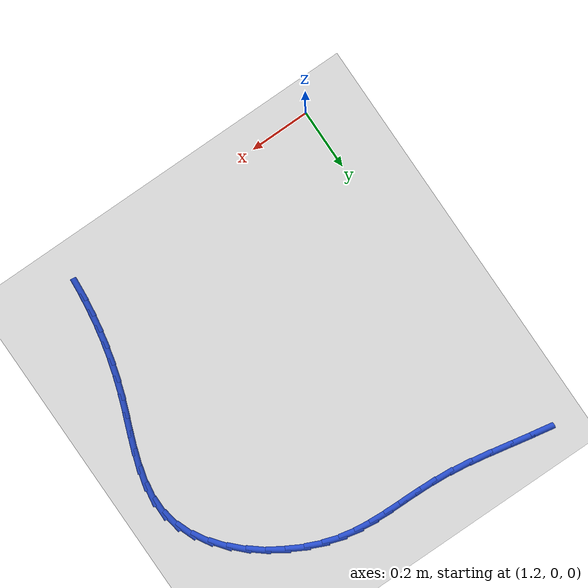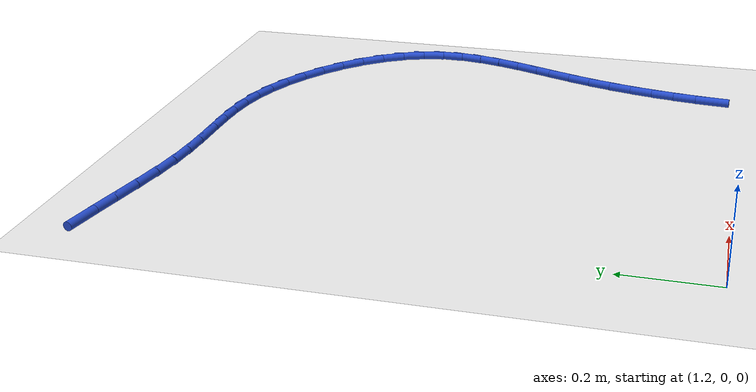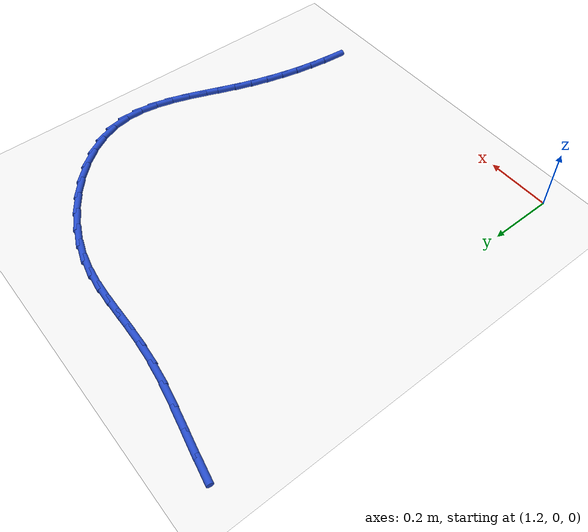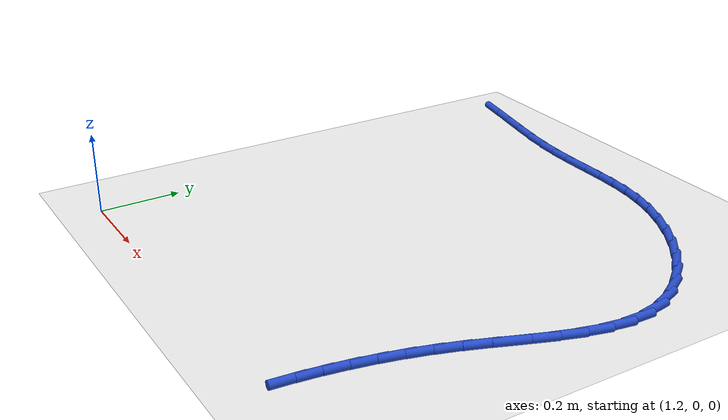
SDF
<sdf version="1.6">
 <world name="default">
  <model name="ground_plane">
   <static>1</static>
   <link name="link">
    <collision name="collision">
     <geometry><plane><normal>0 0 1</normal><size>100 100</size></plane></geometry>
     <surface><friction><ode><mu>100</mu><mu2>50</mu2></ode></friction></surface>
    </collision>
    <visual name="visual">
     <cast_shadows>0</cast_shadows>
     <geometry><plane><normal>0 0 1</normal><size>100 100</size></plane></geometry>
     <material>
      <script><uri>file://media/materials/scripts/gazebo.material</uri><name>Gazebo/WhiteGlow</name></script>
     </material>
    </visual>
   </link>
  </model>
  <model name="line">
   <link name="link_35">
    <pose>1.1548967431918238 1.2301245020325131 0.01 0 1.57 -0.18366892343678137</pose>
    <collision name="collision">
     <geometry><cylinder><radius>0.01</radius><length>0.08</length></cylinder></geometry>
    </collision>
    <visual name="visual">
     <material>
      <script><name>Gazebo/Blue</name><uri>file://media/materials/scripts/gazebo.material</uri></script>
     </material>
     <geometry><cylinder><radius>0.01</radius><length>0.08</length></cylinder></geometry>
    </visual>
   </link>
   <link name="link_36">
    <pose>1.2226299504839877 1.2175422127543887 0.01 0 1.57 -0.19444697268387648</pose>
    <collision name="collision">
     <geometry><cylinder><radius>0.01</radius><length>0.08</length></cylinder></geometry>
    </collision>
    <visual name="visual">
     <material>
      <script><name>Gazebo/Blue</name><uri>file://media/materials/scripts/gazebo.material</uri></script>
     </material>
     <geometry><cylinder><radius>0.01</radius><length>0.08</length></cylinder></geometry>
    </visual>
   </link>
   <link name="link_37">
    <pose>1.2914968063600636 1.2039799000504683 0.01 0 1.57 -0.1876918706073959</pose>
    <collision name="collision">
     <geometry><cylinder><radius>0.01</radius><length>0.08</length></cylinder></geometry>
    </collision>
    <visual name="visual">
     <material>
      <script><name>Gazebo/Blue</name><uri>file://media/materials/scripts/gazebo.material</uri></script>
     </material>
     <geometry><cylinder><radius>0.01</radius><length>0.08</length></cylinder></geometry>
    </visual>
   </link>
   <link name="link_38">
    <pose>1.3601095122993505 1.1909484675255515 0.01 0 1.57 -0.16264667313331255</pose>
    <collision name="collision">
     <geometry><cylinder><radius>0.01</radius><length>0.08</length></cylinder></geometry>
    </collision>
    <visual name="visual">
     <material>
      <script><name>Gazebo/Blue</name><uri>file://media/materials/scripts/gazebo.material</uri></script>
     </material>
     <geometry><cylinder><radius>0.01</radius><length>0.08</length></cylinder></geometry>
    </visual>
   </link>
   <link name="link_39">
    <pose>1.427080269781148 1.1799588187844368 0.01 0 1.57 -0.1162900253006017</pose>
    <collision name="collision">
     <geometry><cylinder><radius>0.01</radius><length>0.08</length></cylinder></geometry>
    </collision>
    <visual name="visual">
     <material>
      <script><name>Gazebo/Blue</name><uri>file://media/materials/scripts/gazebo.material</uri></script>
     </material>
     <geometry><cylinder><radius>0.01</radius><length>0.08</length></cylinder></geometry>
    </visual>
   </link>
   <link name="link_40">
    <pose>1.491045710836937 1.1724865622558065 0.01 0 1.57 -0.06189265783912024</pose>
    <collision name="collision">
     <geometry><cylinder><radius>0.01</radius><length>0.08</length></cylinder></geometry>
    </collision>
    <visual name="visual">
     <material>
      <script><name>Gazebo/Blue</name><uri>file://media/materials/scripts/gazebo.material</uri></script>
     </material>
     <geometry><cylinder><radius>0.01</radius><length>0.08</length></cylinder></geometry>
    </visual>
   </link>
   <link name="link_41">
    <pose>1.5515204781953047 1.1687388314704257 0.01 0 1.57 -0.024410377347635116</pose>
    <collision name="collision">
     <geometry><cylinder><radius>0.01</radius><length>0.08</length></cylinder></geometry>
    </collision>
    <visual name="visual">
     <material>
      <script><name>Gazebo/Blue</name><uri>file://media/materials/scripts/gazebo.material</uri></script>
     </material>
     <geometry><cylinder><radius>0.01</radius><length>0.08</length></cylinder></geometry>
    </visual>
   </link>
   <link name="link_42">
    <pose>1.6091199388111672 1.167332527567537 0.01 0 1.57 -0.009901554772065769</pose>
    <collision name="collision">
     <geometry><cylinder><radius>0.01</radius><length>0.08</length></cylinder></geometry>
    </collision>
    <visual name="visual">
     <material>
      <script><name>Gazebo/Blue</name><uri>file://media/materials/scripts/gazebo.material</uri></script>
     </material>
     <geometry><cylinder><radius>0.01</radius><length>0.08</length></cylinder></geometry>
    </visual>
   </link>
   <link name="link_43">
    <pose>1.6645291477037238 1.166783872320496 0.01 0 1.57 -0.0217905648158715</pose>
    <collision name="collision">
     <geometry><cylinder><radius>0.01</radius><length>0.08</length></cylinder></geometry>
    </collision>
    <visual name="visual">
     <material>
      <script><name>Gazebo/Blue</name><uri>file://media/materials/scripts/gazebo.material</uri></script>
     </material>
     <geometry><cylinder><radius>0.01</radius><length>0.08</length></cylinder></geometry>
    </visual>
   </link>
   <link name="link_44">
    <pose>1.7184331598921756 1.16560908750266 0.01 0 1.57 -0.061798622239073224</pose>
    <collision name="collision">
     <geometry><cylinder><radius>0.01</radius><length>0.08</length></cylinder></geometry>
    </collision>
    <visual name="visual">
     <material>
      <script><name>Gazebo/Blue</name><uri>file://media/materials/scripts/gazebo.material</uri></script>
     </material>
     <geometry><cylinder><radius>0.01</radius><length>0.08</length></cylinder></geometry>
    </visual>
   </link>
   <link name="link_45">
    <pose>1.7715170303957202 1.162324394887384 0.01 0 1.57 -0.12918282378274612</pose>
    <collision name="collision">
     <geometry><cylinder><radius>0.01</radius><length>0.08</length></cylinder></geometry>
    </collision>
    <visual name="visual">
     <material>
      <script><name>Gazebo/Blue</name><uri>file://media/materials/scripts/gazebo.material</uri></script>
     </material>
     <geometry><cylinder><radius>0.01</radius><length>0.08</length></cylinder></geometry>
    </visual>
   </link>
   <link name="link_46">
    <pose>1.824465814233559 1.1554460162480256 0.01 0 1.57 -0.2198661773612178</pose>
    <collision name="collision">
     <geometry><cylinder><radius>0.01</radius><length>0.08</length></cylinder></geometry>
    </collision>
    <visual name="visual">
     <material>
      <script><name>Gazebo/Blue</name><uri>file://media/materials/scripts/gazebo.material</uri></script>
     </material>
     <geometry><cylinder><radius>0.01</radius><length>0.08</length></cylinder></geometry>
    </visual>
   </link>
   <link name="link_47">
    <pose>1.8779645664248898 1.1434901733579397 0.01 0 1.57 -0.3228208349715841</pose>
    <collision name="collision">
     <geometry><cylinder><radius>0.01</radius><length>0.08</length></cylinder></geometry>
    </collision>
    <visual name="visual">
     <material>
      <script><name>Gazebo/Blue</name><uri>file://media/materials/scripts/gazebo.material</uri></script>
     </material>
     <geometry><cylinder><radius>0.01</radius><length>0.08</length></cylinder></geometry>
    </visual>
   </link>
   <link name="link_48">
    <pose>1.932406903756399 1.1252779615877784 0.01 0 1.57 -0.41926896428312277</pose>
    <collision name="collision">
     <geometry><cylinder><radius>0.01</radius><length>0.08</length></cylinder></geometry>
    </collision>
    <visual name="visual">
     <material>
      <script><name>Gazebo/Blue</name><uri>file://media/materials/scripts/gazebo.material</uri></script>
     </material>
     <geometry><cylinder><radius>0.01</radius><length>0.08</length></cylinder></geometry>
    </visual>
   </link>
   <link name="link_49">
    <pose>1.9868760469823592 1.1010012818776396 0.01 0 1.57 -0.5100011967996134</pose>
    <collision name="collision">
     <geometry><cylinder><radius>0.01</radius><length>0.08</length></cylinder></geometry>
    </collision>
    <visual name="visual">
     <material>
      <script><name>Gazebo/Blue</name><uri>file://media/materials/scripts/gazebo.material</uri></script>
     </material>
     <geometry><cylinder><radius>0.01</radius><length>0.08</length></cylinder></geometry>
    </visual>
   </link>
   <link name="link_50">
    <pose>2.040087080061496 1.0712371431480954 0.01 0 1.57 -0.6001442837054394</pose>
    <collision name="collision">
     <geometry><cylinder><radius>0.01</radius><length>0.08</length></cylinder></geometry>
    </collision>
    <visual name="visual">
     <material>
      <script><name>Gazebo/Blue</name><uri>file://media/materials/scripts/gazebo.material</uri></script>
     </material>
     <geometry><cylinder><radius>0.01</radius><length>0.08</length></cylinder></geometry>
    </visual>
   </link>
   <link name="link_51">
    <pose>2.090755067546293 1.0365625746205862 0.01 0 1.57 -0.6944185450121094</pose>
    <collision name="collision">
     <geometry><cylinder><radius>0.01</radius><length>0.08</length></cylinder></geometry>
    </collision>
    <visual name="visual">
     <material>
      <script><name>Gazebo/Blue</name><uri>file://media/materials/scripts/gazebo.material</uri></script>
     </material>
     <geometry><cylinder><radius>0.01</radius><length>0.08</length></cylinder></geometry>
    </visual>
   </link>
   <link name="link_52">
    <pose>2.1375950739892375 0.997554605516552 0.01 0 1.57 -0.7976739456535579</pose>
    <collision name="collision">
     <geometry><cylinder><radius>0.01</radius><length>0.08</length></cylinder></geometry>
    </collision>
    <visual name="visual">
     <material>
      <script><name>Gazebo/Blue</name><uri>file://media/materials/scripts/gazebo.material</uri></script>
     </material>
     <geometry><cylinder><radius>0.01</radius><length>0.08</length></cylinder></geometry>
    </visual>
   </link>
   <link name="link_53">
    <pose>2.179322163942816 0.9547902650574335 0.01 0 1.57 -0.9152655840612712</pose>
    <collision name="collision">
     <geometry><cylinder><radius>0.01</radius><length>0.08</length></cylinder></geometry>
    </collision>
    <visual name="visual">
     <material>
      <script><name>Gazebo/Blue</name><uri>file://media/materials/scripts/gazebo.material</uri></script>
     </material>
     <geometry><cylinder><radius>0.01</radius><length>0.08</length></cylinder></geometry>
    </visual>
   </link>
   <link name="link_54">
    <pose>2.214651401959514 0.9088465824646703 0.01 0 1.57 -1.0531129473549132</pose>
    <collision name="collision">
     <geometry><cylinder><radius>0.01</radius><length>0.08</length></cylinder></geometry>
    </collision>
    <visual name="visual">
     <material>
      <script><name>Gazebo/Blue</name><uri>file://media/materials/scripts/gazebo.material</uri></script>
     </material>
     <geometry><cylinder><radius>0.01</radius><length>0.08</length></cylinder></geometry>
    </visual>
   </link>
   <link name="link_55">
    <pose>2.2422978525918174 0.8603005869597031 0.01 0 1.57 -1.2169843292213263</pose>
    <collision name="collision">
     <geometry><cylinder><radius>0.01</radius><length>0.08</length></cylinder></geometry>
    </collision>
    <visual name="visual">
     <material>
      <script><name>Gazebo/Blue</name><uri>file://media/materials/scripts/gazebo.material</uri></script>
     </material>
     <geometry><cylinder><radius>0.01</radius><length>0.08</length></cylinder></geometry>
    </visual>
   </link>
   <link name="link_56">
    <pose>2.260976580392213 0.8097293077639723 0.01 0 1.57 -1.408436548187252</pose>
    <collision name="collision">
     <geometry><cylinder><radius>0.01</radius><length>0.08</length></cylinder></geometry>
    </collision>
    <visual name="visual">
     <material>
      <script><name>Gazebo/Blue</name><uri>file://media/materials/scripts/gazebo.material</uri></script>
     </material>
     <geometry><cylinder><radius>0.01</radius><length>0.08</length></cylinder></geometry>
    </visual>
   </link>
   <link name="link_57">
    <pose>2.2694991461197414 0.7576995074178495 0.01 0 1.57 1.5486401529036067</pose>
    <collision name="collision">
     <geometry><cylinder><radius>0.01</radius><length>0.08</length></cylinder></geometry>
    </collision>
    <visual name="visual">
     <material>
      <script><name>Gazebo/Blue</name><uri>file://media/materials/scripts/gazebo.material</uri></script>
     </material>
     <geometry><cylinder><radius>0.01</radius><length>0.08</length></cylinder></geometry>
    </visual>
   </link>
   <link name="link_58">
    <pose>2.2683225355613668 0.7046028840256333 0.01 0 1.57 1.4046726871704147</pose>
    <collision name="collision">
     <geometry><cylinder><radius>0.01</radius><length>0.08</length></cylinder></geometry>
    </collision>
    <visual name="visual">
     <material>
      <script><name>Gazebo/Blue</name><uri>file://media/materials/scripts/gazebo.material</uri></script>
     </material>
     <geometry><cylinder><radius>0.01</radius><length>0.08</length></cylinder></geometry>
    </visual>
   </link>
   <link name="link_59">
    <pose>2.2592820983150124 0.6506844851428729 0.01 0 1.57 1.3017657845554083</pose>
    <collision name="collision">
     <geometry><cylinder><radius>0.01</radius><length>0.08</length></cylinder></geometry>
    </collision>
    <visual name="visual">
     <material>
      <script><name>Gazebo/Blue</name><uri>file://media/materials/scripts/gazebo.material</uri></script>
     </material>
     <geometry><cylinder><radius>0.01</radius><length>0.08</length></cylinder></geometry>
    </visual>
   </link>
   <link name="link_60">
    <pose>2.2442557422322778 0.5961848303541974 0.01 0 1.57 1.2350927831389917</pose>
    <collision name="collision">
     <geometry><cylinder><radius>0.01</radius><length>0.08</length></cylinder></geometry>
    </collision>
    <visual name="visual">
     <material>
      <script><name>Gazebo/Blue</name><uri>file://media/materials/scripts/gazebo.material</uri></script>
     </material>
     <geometry><cylinder><radius>0.01</radius><length>0.08</length></cylinder></geometry>
    </visual>
   </link>
   <link name="link_61">
    <pose>2.2251213751647647 0.5413444392442341 0.01 0 1.57 1.199925935378097</pose>
    <collision name="collision">
     <geometry><cylinder><radius>0.01</radius><length>0.08</length></cylinder></geometry>
    </collision>
    <visual name="visual">
     <material>
      <script><name>Gazebo/Blue</name><uri>file://media/materials/scripts/gazebo.material</uri></script>
     </material>
     <geometry><cylinder><radius>0.01</radius><length>0.08</length></cylinder></geometry>
    </visual>
   </link>
   <link name="link_62">
    <pose>2.203756904964073 0.4864038313976119 0.01 0 1.57 1.1934946358861824</pose>
    <collision name="collision">
     <geometry><cylinder><radius>0.01</radius><length>0.08</length></cylinder></geometry>
    </collision>
    <visual name="visual">
     <material>
      <script><name>Gazebo/Blue</name><uri>file://media/materials/scripts/gazebo.material</uri></script>
     </material>
     <geometry><cylinder><radius>0.01</radius><length>0.08</length></cylinder></geometry>
    </visual>
   </link>
   <link name="link_63">
    <pose>2.1820402394818013 0.4316035263989578 0.01 0 1.57 1.21532517691267</pose>
    <collision name="collision">
     <geometry><cylinder><radius>0.01</radius><length>0.08</length></cylinder></geometry>
    </collision>
    <visual name="visual">
     <material>
      <script><name>Gazebo/Blue</name><uri>file://media/materials/scripts/gazebo.material</uri></script>
     </material>
     <geometry><cylinder><radius>0.01</radius><length>0.08</length></cylinder></geometry>
    </visual>
   </link>
   <link name="link_64">
    <pose>2.1618366161466795 0.37718169070808305 0.01 0 1.57 1.2557580959203938</pose>
    <collision name="collision">
     <geometry><cylinder><radius>0.01</radius><length>0.08</length></cylinder></geometry>
    </collision>
    <visual name="visual">
     <material>
      <script><name>Gazebo/Blue</name><uri>file://media/materials/scripts/gazebo.material</uri></script>
     </material>
     <geometry><cylinder><radius>0.01</radius><length>0.08</length></cylinder></geometry>
    </visual>
   </link>
   <link name="link_65">
    <pose>2.144256249244159 0.32323626944296807 0.01 0 1.57 1.2976214716087273</pose>
    <collision name="collision">
     <geometry><cylinder><radius>0.01</radius><length>0.08</length></cylinder></geometry>
    </collision>
    <visual name="visual">
     <material>
      <script><name>Gazebo/Blue</name><uri>file://media/materials/scripts/gazebo.material</uri></script>
     </material>
     <geometry><cylinder><radius>0.01</radius><length>0.08</length></cylinder></geometry>
    </visual>
   </link>
   <link name="link_66">
    <pose>2.1292420487084387 0.26964841836366 0.01 0 1.57 1.3388521409441332</pose>
    <collision name="collision">
     <geometry><cylinder><radius>0.01</radius><length>0.08</length></cylinder></geometry>
    </collision>
    <visual name="visual">
     <material>
      <script><name>Gazebo/Blue</name><uri>file://media/materials/scripts/gazebo.material</uri></script>
     </material>
     <geometry><cylinder><radius>0.01</radius><length>0.08</length></cylinder></geometry>
    </visual>
   </link>
   <link name="link_67">
    <pose>2.116636858860883 0.21628070925085838 0.01 0 1.57 1.3788864061065833</pose>
    <collision name="collision">
     <geometry><cylinder><radius>0.01</radius><length>0.08</length></cylinder></geometry>
    </collision>
    <visual name="visual">
     <material>
      <script><name>Gazebo/Blue</name><uri>file://media/materials/scripts/gazebo.material</uri></script>
     </material>
     <geometry><cylinder><radius>0.01</radius><length>0.08</length></cylinder></geometry>
    </visual>
   </link>
   <link name="link_68">
    <pose>2.106283524022858 0.16299571388526096 0.01 0 1.57 1.417185159427692</pose>
    <collision name="collision">
     <geometry><cylinder><radius>0.01</radius><length>0.08</length></cylinder></geometry>
    </collision>
    <visual name="visual">
     <material>
      <script><name>Gazebo/Blue</name><uri>file://media/materials/scripts/gazebo.material</uri></script>
     </material>
     <geometry><cylinder><radius>0.01</radius><length>0.08</length></cylinder></geometry>
    </visual>
   </link>
   <link name="link_69">
    <pose>2.0980248885157278 0.10965600404756759 0.01 0 1.57 1.4532596387621757</pose>
    <collision name="collision">
     <geometry><cylinder><radius>0.01</radius><length>0.08</length></cylinder></geometry>
    </collision>
    <visual name="visual">
     <material>
      <script><name>Gazebo/Blue</name><uri>file://media/materials/scripts/gazebo.material</uri></script>
     </material>
     <geometry><cylinder><radius>0.01</radius><length>0.08</length></cylinder></geometry>
    </visual>
   </link>
   <link name="link_70">
    <pose>2.091703796660858 0.05612415151847604 0.01 0 1.57 1.486691745172485</pose>
    <collision name="collision">
     <geometry><cylinder><radius>0.01</radius><length>0.08</length></cylinder></geometry>
    </collision>
    <visual name="visual">
     <material>
      <script><name>Gazebo/Blue</name><uri>file://media/materials/scripts/gazebo.material</uri></script>
     </material>
     <geometry><cylinder><radius>0.01</radius><length>0.08</length></cylinder></geometry>
    </visual>
   </link>
  </model>
 </world>
</sdf>
